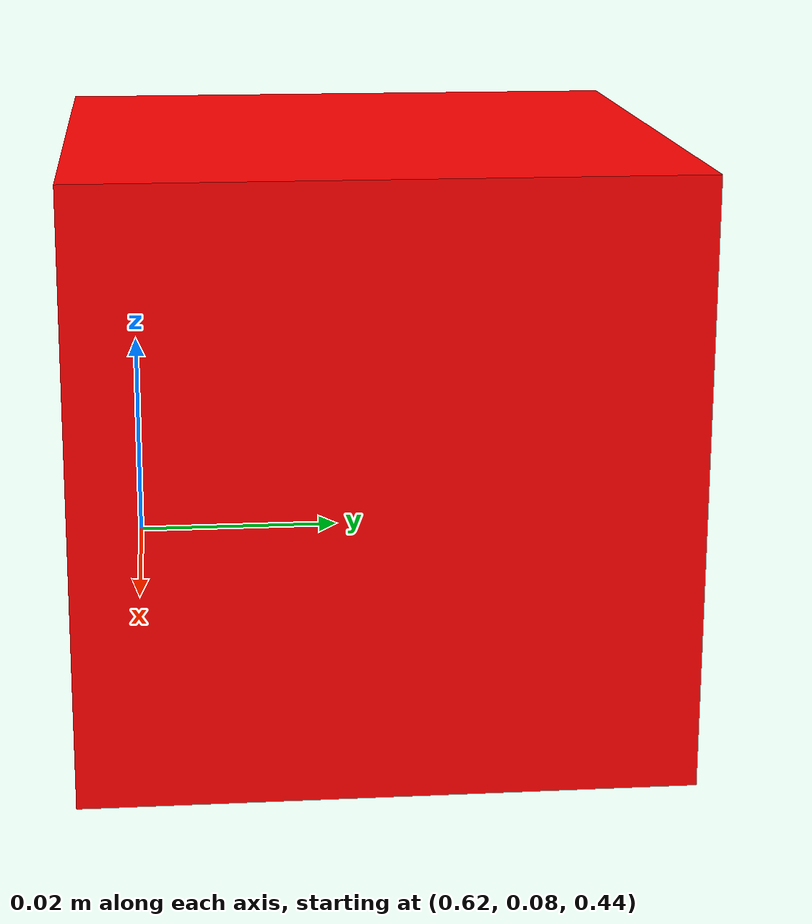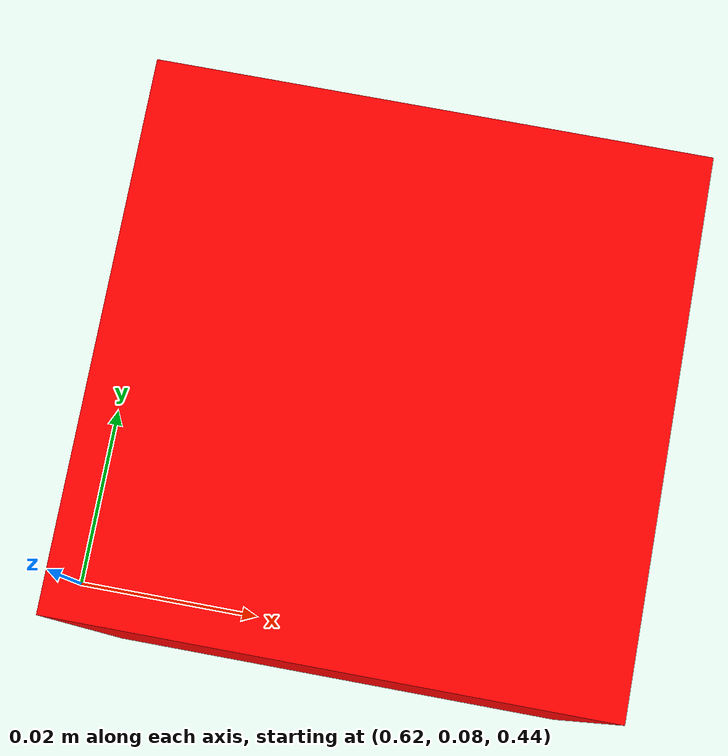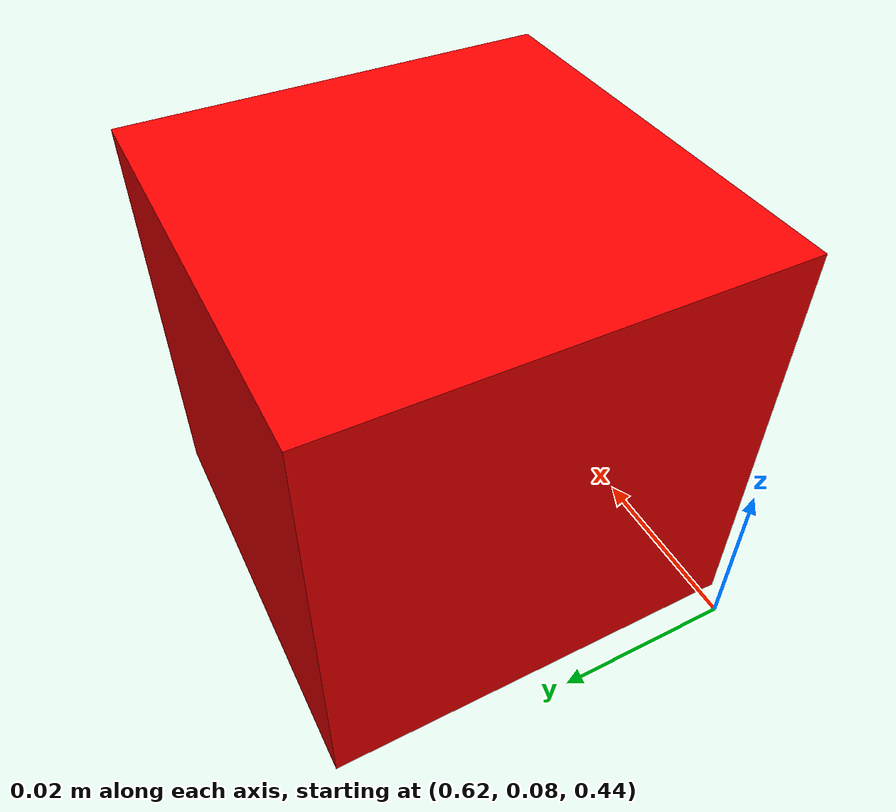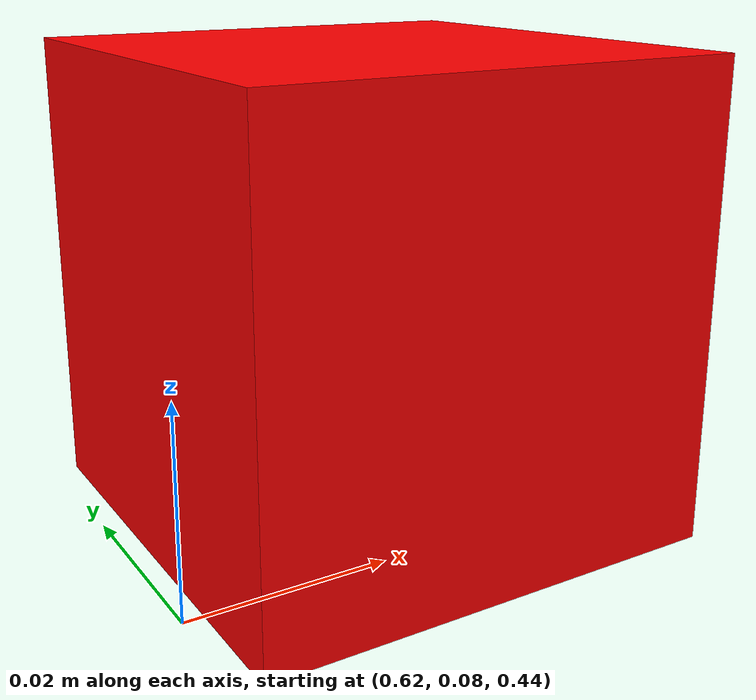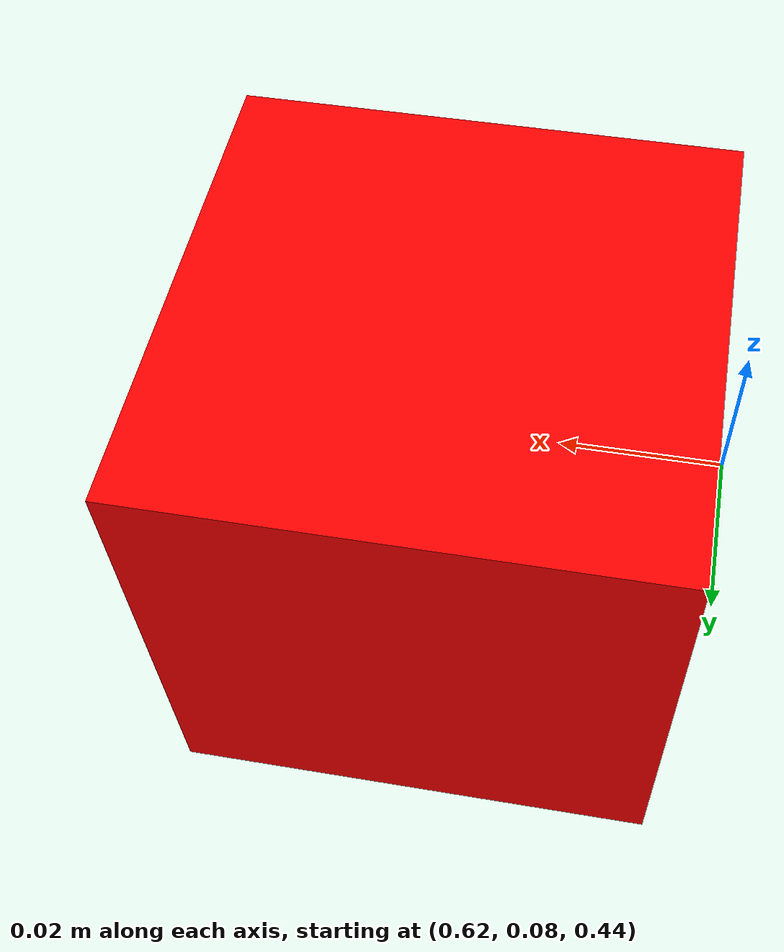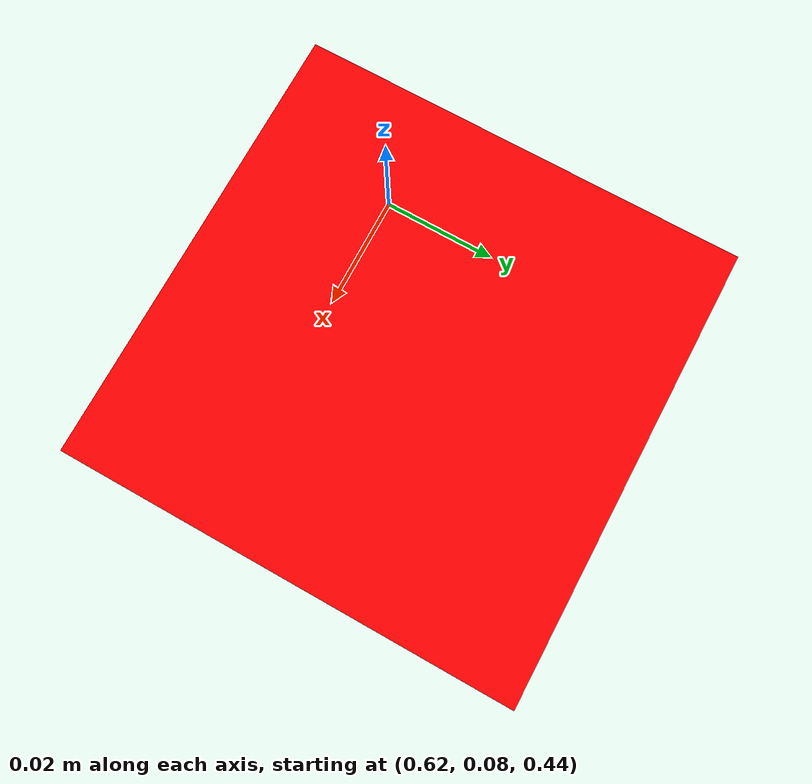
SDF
<?xml version="1.0"?>

<sdf version="1.9">

  <world name="perception_world">

    <plugin
      filename="gz-sim-physics-system"
      name="gz::sim::systems::Physics"/>

    <plugin
      filename="gz-sim-user-commands-system"
      name="gz::sim::systems::UserCommands"/>

    <plugin
      filename="gz-sim-scene-broadcaster-system"
      name="gz::sim::systems::SceneBroadcaster"/>

    <plugin
      filename="gz-sim-sensors-system"
      name="gz::sim::systems::Sensors">
      <render_engine>ogre2</render_engine>
    </plugin>

    <light type="directional"
           name="sun">
      <pose>0 0 10 0 0 0</pose>
      <diffuse>0.8 0.8 0.8 1</diffuse>
      <direction>-0.5 0.1 -0.9</direction>
    </light>

    <model name="ground_plane">
      <static>true</static>
      <link name="link">
        <collision name="collision">
          <geometry>
            <plane>
              <normal>0 0 1</normal>
              <size>25 25</size>
            </plane>
          </geometry>
        </collision>
        <visual name="visual">
          <geometry>
            <plane>
              <normal>0 0 1</normal>
              <size>25 25</size>
            </plane>
          </geometry>
          <material>
            <ambient>0.4 0.3 0.2 0.8</ambient>
            <diffuse>0.4 0.3 0.2 0.8</diffuse>
          </material>
        </visual>
      </link>
    </model>

    <model name="table">
      <static>true</static>
      <pose>0.7 0 0.79 0 0 0</pose>
      <link name="table_link">
        <collision name="collision">
          <geometry>
            <box>
              <size>15.0 11.0 0.1</size>
            </box>
          </geometry>
        </collision>
        <visual name="visual">
          <geometry>
            <box>
              <size>15.0 11.0 0.1</size>
            </box>
          </geometry>
          <material>
            <ambient>0.5 0.35 0.2 1</ambient>
            <diffuse>0.5 0.35 0.2 1</diffuse>
          </material>
        </visual>
      </link>
    </model>

    <model name="red_cube">
      <pose>0.65 0.1 0.46 0 0 0</pose>
      <link name="cube_link">
        <inertial>
          <mass>0.1</mass>
          <inertia>
            <ixx>0.00004</ixx>
            <iyy>0.00004</iyy>
            <izz>0.00004</izz>
          </inertia>
        </inertial>
        <collision name="collision">
          <geometry>
            <box>
              <size>0.05 0.05 0.05</size>
            </box>
          </geometry>
        </collision>
        <visual name="visual">
          <geometry>
            <box>
              <size>0.05 0.05 0.05</size>
            </box>
          </geometry>
          <material>
            <ambient>1 0 0 1</ambient>
            <diffuse>1 0 0 1</diffuse>
          </material>
        </visual>
      </link>
    </model>
  </world>

</sdf>
